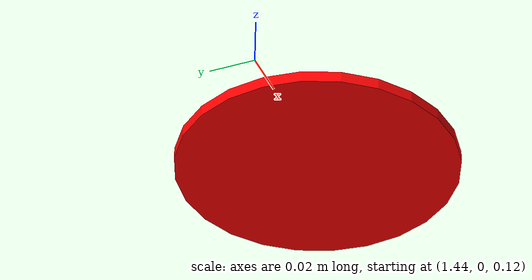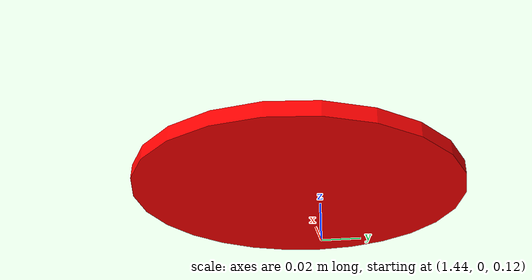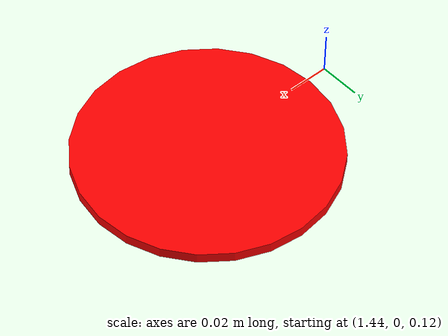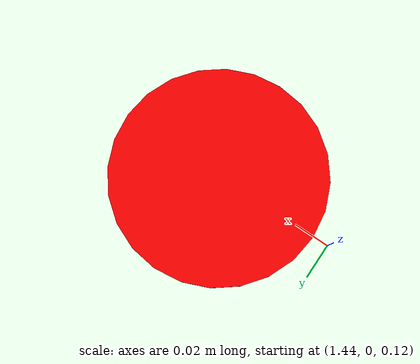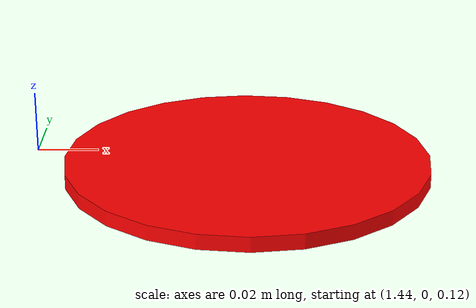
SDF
<?xml version='1.0'?>
<sdf version='1.6'>
  <model name='puck'>
  <pose>1.51 0 0.115 0 0 0</pose>
    <link name='link_0'>
      <inertial>
        <mass>0.01</mass>
        <inertia>
          <ixx>0.0038</ixx>
          <ixy>0</ixy>
          <ixz>0</ixz>
          <iyy>0.0038</iyy>
          <iyz>0</iyz>
          <izz>0.05</izz>
        </inertia>
        <pose frame=''>0 0 0 0 0 0</pose>
      </inertial>
      <pose frame=''>0 0 0 0 -0 0</pose>
      <gravity>1</gravity>
      <self_collide>0</self_collide>
      <kinematic>0</kinematic>
      <enable_wind>0</enable_wind>
      <visual name='visual'>
        <pose frame=''>0 0 0 0 0 0</pose>
        <geometry>
          <cylinder>
            <radius>0.0615</radius>
            <length>0.005</length>
          </cylinder>
        </geometry>
          <material>
            <ambient>0.5 0.75 0 1</ambient>
            <diffuse>1.0 0 0 1</diffuse>
            <specular>0.2 0.2 0.2 64</specular>
            <emissive>0.1 0 0.1 1</emissive>
          </material>
      </visual>
      <collision name='collision'>
        <pose frame=''>0 0 0 0 -0 0</pose>
        <geometry>
          <cylinder>
            <radius>0.0615</radius>
            <length>0.005</length>
          </cylinder>
        </geometry>
        <surface>
          <bounce>
            <restitution_coefficient>0.95</restitution_coefficient>
            <threshold>0</threshold>
          </bounce>
          <friction>
            <ode>
              <mu>0</mu>
              <mu2>0</mu2>
            </ode>
          </friction>
          <contact>
            <ode>
              <soft_cfm>0.1</soft_cfm>
              <soft_erp>0.1</soft_erp>
              <max_vel>1</max_vel>
            </ode>
          </contact>
        </surface>
      </collision>
    </link>
    <static>0</static>
    <allow_auto_disable>1</allow_auto_disable>
  </model>
</sdf>
